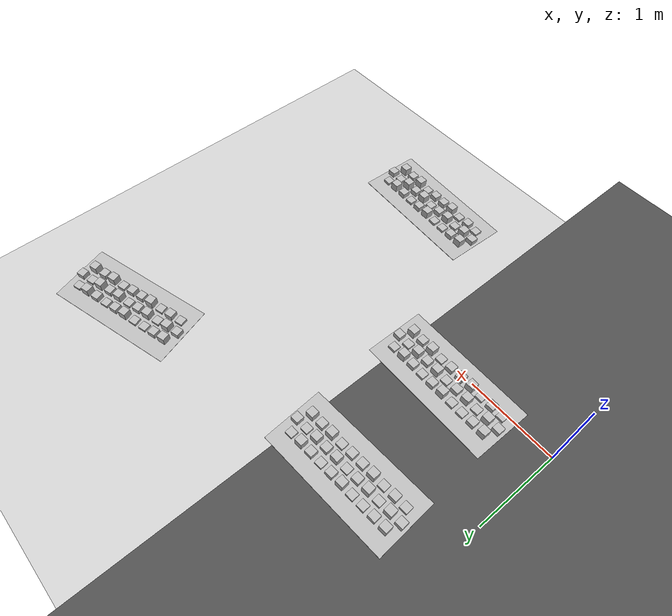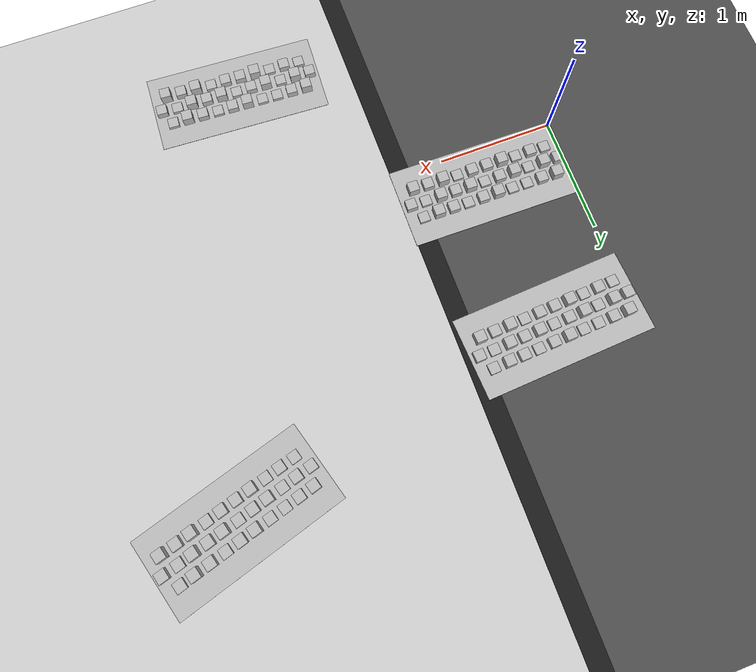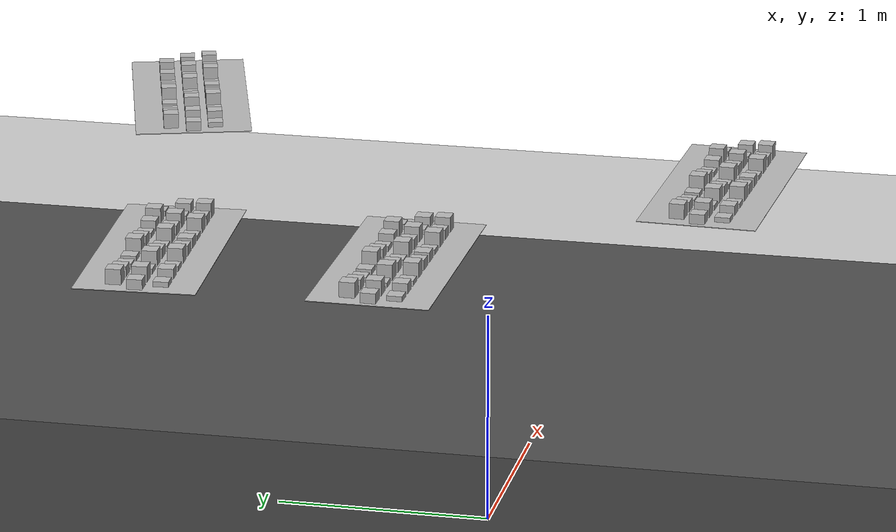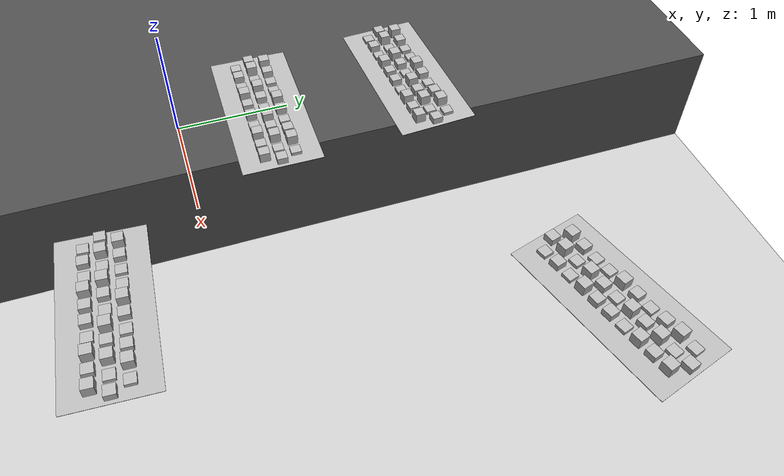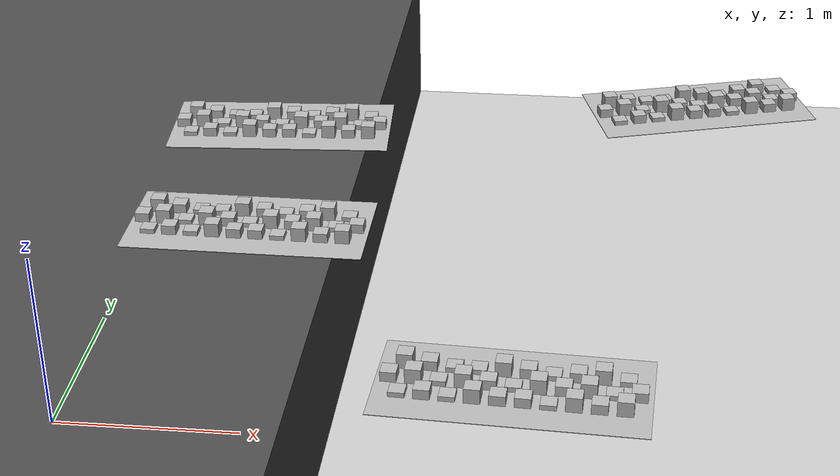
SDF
<sdf version="1.6">
 <world name="default">
  <model name="ground_plane">
   <static>1</static>
   <link name="link">
    <collision name="collision">
     <geometry><plane><normal>0 0 1</normal><size>100 100</size></plane></geometry>
     <surface><friction><ode><mu>100</mu><mu2>50</mu2></ode></friction></surface>
    </collision>
    <visual name="visual">
     <cast_shadows>0</cast_shadows>
     <geometry><plane><normal>0 0 1</normal><size>100 100</size></plane></geometry>
     <material>
      <script><uri>file://media/materials/scripts/gazebo.material</uri><name>Gazebo/Grey</name></script>
     </material>
    </visual>
   </link>
  </model>
  <model name="asphalt_plane">
   <static>1</static>
   <link name="link">
    <collision name="collision">
     <geometry><box><size>20 20 1.4296</size></box></geometry>
     <surface><friction><ode><mu>100</mu><mu2>50</mu2></ode></friction></surface>
    </collision>
    <visual name="visual">
     <cast_shadows>0</cast_shadows>
     <geometry><box><size>20 20 1.4296</size></box></geometry>
     <material>
      <script>
       <uri>model://asphalt_plane/materials/scripts</uri>
       <uri>model://asphalt_plane/materials/textures</uri>
       <name>vrc/asphalt</name>
      </script>
     </material>
    </visual>
   </link>
   <pose>-8.53833 2.29833 0.165376 0 -0 0</pose>
  </model>
  <model name="frc2016_roughterrain_1_clone">
   <static>0</static>
   <link name="link">
    <visual name="platform">
     <pose>0 0 0.08269 0 -0 0</pose>
     <geometry><box><size>1.27 0.5969 0.003175</size></box></geometry>
    </visual>
    <collision name="platform">
     <pose>0 0 0.08269 0 -0 0</pose>
     <geometry><box><size>1.27 0.5969 0.003175</size></box></geometry>
    </collision>
    <visual name="row1_block1_sm">
     <pose>0.51435 0.1143 0.09698 0 -0 0</pose>
     <geometry><box><size>0.0762 0.0762 0.0254</size></box></geometry>
    </visual>
    <collision name="row1_block1_sm">
     <pose>0.51435 0.1143 0.09698 0 -0 0</pose>
     <geometry><box><size>0.0762 0.0762 0.0254</size></box></geometry>
    </collision>
    <visual name="row1_block2_lg">
     <pose>0.40005 0.1143 0.12238 0 -0 0</pose>
     <geometry><box><size>0.0762 0.0762 0.0762</size></box></geometry>
    </visual>
    <collision name="row1_block2_lg">
     <pose>0.40005 0.1143 0.12238 0 -0 0</pose>
     <geometry><box><size>0.0762 0.0762 0.0762</size></box></geometry>
    </collision>
    <visual name="row1_block3_md">
     <pose>0.28575 0.1143 0.10968 0 -0 0</pose>
     <geometry><box><size>0.0762 0.0762 0.0508</size></box></geometry>
    </visual>
    <collision name="row1_block3_md">
     <pose>0.28575 0.1143 0.10968 0 -0 0</pose>
     <geometry><box><size>0.0762 0.0762 0.0508</size></box></geometry>
    </collision>
    <visual name="row1_block4_sm">
     <pose>0.17145 0.1143 0.09698 0 -0 0</pose>
     <geometry><box><size>0.0762 0.0762 0.0254</size></box></geometry>
    </visual>
    <collision name="row1_block4_sm">
     <pose>0.17145 0.1143 0.09698 0 -0 0</pose>
     <geometry><box><size>0.0762 0.0762 0.0254</size></box></geometry>
    </collision>
    <visual name="row1_block5_md">
     <pose>0.05715 0.1143 0.10968 0 -0 0</pose>
     <geometry><box><size>0.0762 0.0762 0.0508</size></box></geometry>
    </visual>
    <collision name="row1_block5_md">
     <pose>0.05715 0.1143 0.10968 0 -0 0</pose>
     <geometry><box><size>0.0762 0.0762 0.0508</size></box></geometry>
    </collision>
    <visual name="row1_block6_lg">
     <pose>-0.05715 0.1143 0.12238 0 -0 0</pose>
     <geometry><box><size>0.0762 0.0762 0.0762</size></box></geometry>
    </visual>
    <collision name="row1_block6_lg">
     <pose>-0.05715 0.1143 0.12238 0 -0 0</pose>
     <geometry><box><size>0.0762 0.0762 0.0762</size></box></geometry>
    </collision>
    <visual name="row1_block7_sm">
     <pose>-0.17145 0.1143 0.09698 0 -0 0</pose>
     <geometry><box><size>0.0762 0.0762 0.0254</size></box></geometry>
    </visual>
    <collision name="row1_block7_sm">
     <pose>-0.17145 0.1143 0.09698 0 -0 0</pose>
     <geometry><box><size>0.0762 0.0762 0.0254</size></box></geometry>
    </collision>
    <visual name="row1_block8_sm">
     <pose>-0.28575 0.1143 0.09698 0 -0 0</pose>
     <geometry><box><size>0.0762 0.0762 0.0254</size></box></geometry>
    </visual>
    <collision name="row1_block8_sm">
     <pose>-0.28575 0.1143 0.09698 0 -0 0</pose>
     <geometry><box><size>0.0762 0.0762 0.0254</size></box></geometry>
    </collision>
    <visual name="row1_block9_md">
     <pose>-0.40005 0.1143 0.10968 0 -0 0</pose>
     <geometry><box><size>0.0762 0.0762 0.0508</size></box></geometry>
    </visual>
    <collision name="row1_block9_md">
     <pose>-0.40005 0.1143 0.10968 0 -0 0</pose>
     <geometry><box><size>0.0762 0.0762 0.0508</size></box></geometry>
    </collision>
    <visual name="row1_block10_lg">
     <pose>-0.51435 0.1143 0.12238 0 -0 0</pose>
     <geometry><box><size>0.0762 0.0762 0.0762</size></box></geometry>
    </visual>
    <collision name="row1_block10_lg">
     <pose>-0.51435 0.1143 0.12238 0 -0 0</pose>
     <geometry><box><size>0.0762 0.0762 0.0762</size></box></geometry>
    </collision>
    <visual name="row2_block1_md">
     <pose>0.5715 0 0.10968 0 -0 0</pose>
     <geometry><box><size>0.0762 0.0762 0.0508</size></box></geometry>
    </visual>
    <collision name="row2_block1_md">
     <pose>0.5715 0 0.10968 0 -0 0</pose>
     <geometry><box><size>0.0762 0.0762 0.0508</size></box></geometry>
    </collision>
    <visual name="row2_block2_sm">
     <pose>0.4572 0 0.09698 0 -0 0</pose>
     <geometry><box><size>0.0762 0.0762 0.0254</size></box></geometry>
    </visual>
    <collision name="row2_block2_sm">
     <pose>0.4572 0 0.09698 0 -0 0</pose>
     <geometry><box><size>0.0762 0.0762 0.0254</size></box></geometry>
    </collision>
    <visual name="row2_block3_lg">
     <pose>0.3429 0 0.12238 0 -0 0</pose>
     <geometry><box><size>0.0762 0.0762 0.0762</size></box></geometry>
    </visual>
    <collision name="row2_block3_lg">
     <pose>0.3429 0 0.12238 0 -0 0</pose>
     <geometry><box><size>0.0762 0.0762 0.0762</size></box></geometry>
    </collision>
    <visual name="row2_block4_md">
     <pose>0.2286 0 0.10968 0 -0 0</pose>
     <geometry><box><size>0.0762 0.0762 0.0508</size></box></geometry>
    </visual>
    <collision name="row2_block4_md">
     <pose>0.2286 0 0.10968 0 -0 0</pose>
     <geometry><box><size>0.0762 0.0762 0.0508</size></box></geometry>
    </collision>
    <visual name="row2_block5_lg">
     <pose>0.1143 0 0.12238 0 -0 0</pose>
     <geometry><box><size>0.0762 0.0762 0.0762</size></box></geometry>
    </visual>
    <collision name="row2_block5_lg">
     <pose>0.1143 0 0.12238 0 -0 0</pose>
     <geometry><box><size>0.0762 0.0762 0.0762</size></box></geometry>
    </collision>
    <visual name="row2_block6_sm">
     <pose>0 0 0.09698 0 -0 0</pose>
     <geometry><box><size>0.0762 0.0762 0.0254</size></box></geometry>
    </visual>
    <collision name="row2_block6_sm">
     <pose>0 0 0.09698 0 -0 0</pose>
     <geometry><box><size>0.0762 0.0762 0.0254</size></box></geometry>
    </collision>
    <visual name="row2_block7_md">
     <pose>-0.1143 0 0.10968 0 -0 0</pose>
     <geometry><box><size>0.0762 0.0762 0.0508</size></box></geometry>
    </visual>
    <collision name="row2_block7_md">
     <pose>-0.1143 0 0.10968 0 -0 0</pose>
     <geometry><box><size>0.0762 0.0762 0.0508</size></box></geometry>
    </collision>
    <visual name="row2_block8_lg">
     <pose>-0.2286 0 0.12238 0 -0 0</pose>
     <geometry><box><size>0.0762 0.0762 0.0762</size></box></geometry>
    </visual>
    <collision name="row2_block8_lg">
     <pose>-0.2286 0 0.12238 0 -0 0</pose>
     <geometry><box><size>0.0762 0.0762 0.0762</size></box></geometry>
    </collision>
    <visual name="row2_block9_sm">
     <pose>-0.3429 0 0.09698 0 -0 0</pose>
     <geometry><box><size>0.0762 0.0762 0.0254</size></box></geometry>
    </visual>
    <collision name="row2_block9_sm">
     <pose>-0.3429 0 0.09698 0 -0 0</pose>
     <geometry><box><size>0.0762 0.0762 0.0254</size></box></geometry>
    </collision>
    <visual name="row2_block10_lg">
     <pose>-0.4572 0 0.12238 0 -0 0</pose>
     <geometry><box><size>0.0762 0.0762 0.0762</size></box></geometry>
    </visual>
    <collision name="row2_block10_lg">
     <pose>-0.4572 0 0.12238 0 -0 0</pose>
     <geometry><box><size>0.0762 0.0762 0.0762</size></box></geometry>
    </collision>
    <visual name="row2_block11_md">
     <pose>-0.5715 0 0.10968 0 -0 0</pose>
     <geometry><box><size>0.0762 0.0762 0.0508</size></box></geometry>
    </visual>
    <collision name="row2_block11_md">
     <pose>-0.5715 0 0.10968 0 -0 0</pose>
     <geometry><box><size>0.0762 0.0762 0.0508</size></box></geometry>
    </collision>
    <visual name="row3_block1_lg">
     <pose>0.51435 -0.1143 0.12238 0 -0 0</pose>
     <geometry><box><size>0.0762 0.0762 0.0762</size></box></geometry>
    </visual>
    <collision name="row3_block1_lg">
     <pose>0.51435 -0.1143 0.12238 0 -0 0</pose>
     <geometry><box><size>0.0762 0.0762 0.0762</size></box></geometry>
    </collision>
    <visual name="row3_block2_md">
     <pose>0.40005 -0.1143 0.10968 0 -0 0</pose>
     <geometry><box><size>0.0762 0.0762 0.0508</size></box></geometry>
    </visual>
    <collision name="row3_block2_md">
     <pose>0.40005 -0.1143 0.10968 0 -0 0</pose>
     <geometry><box><size>0.0762 0.0762 0.0508</size></box></geometry>
    </collision>
    <visual name="row3_block3_lg">
     <pose>0.28575 -0.1143 0.12238 0 -0 0</pose>
     <geometry><box><size>0.0762 0.0762 0.0762</size></box></geometry>
    </visual>
    <collision name="row3_block3_lg">
     <pose>0.28575 -0.1143 0.12238 0 -0 0</pose>
     <geometry><box><size>0.0762 0.0762 0.0762</size></box></geometry>
    </collision>
    <visual name="row3_block4_sm">
     <pose>0.17145 -0.1143 0.09698 0 -0 0</pose>
     <geometry><box><size>0.0762 0.0762 0.0254</size></box></geometry>
    </visual>
    <collision name="row3_block4_sm">
     <pose>0.17145 -0.1143 0.09698 0 -0 0</pose>
     <geometry><box><size>0.0762 0.0762 0.0254</size></box></geometry>
    </collision>
    <visual name="row3_block5_md">
     <pose>0.05715 -0.1143 0.10968 0 -0 0</pose>
     <geometry><box><size>0.0762 0.0762 0.0508</size></box></geometry>
    </visual>
    <collision name="row3_block5_md">
     <pose>0.05715 -0.1143 0.10968 0 -0 0</pose>
     <geometry><box><size>0.0762 0.0762 0.0508</size></box></geometry>
    </collision>
    <visual name="row3_block6_md">
     <pose>-0.05715 -0.1143 0.10968 0 -0 0</pose>
     <geometry><box><size>0.0762 0.0762 0.0508</size></box></geometry>
    </visual>
    <collision name="row3_block6_md">
     <pose>-0.05715 -0.1143 0.10968 0 -0 0</pose>
     <geometry><box><size>0.0762 0.0762 0.0508</size></box></geometry>
    </collision>
    <visual name="row3_block7_lg">
     <pose>-0.17145 -0.1143 0.12238 0 -0 0</pose>
     <geometry><box><size>0.0762 0.0762 0.0762</size></box></geometry>
    </visual>
    <collision name="row3_block7_lg">
     <pose>-0.17145 -0.1143 0.12238 0 -0 0</pose>
     <geometry><box><size>0.0762 0.0762 0.0762</size></box></geometry>
    </collision>
    <visual name="row3_block8_sm">
     <pose>-0.28575 -0.1143 0.09698 0 -0 0</pose>
     <geometry><box><size>0.0762 0.0762 0.0254</size></box></geometry>
    </visual>
    <collision name="row3_block8_sm">
     <pose>-0.28575 -0.1143 0.09698 0 -0 0</pose>
     <geometry><box><size>0.0762 0.0762 0.0254</size></box></geometry>
    </collision>
    <visual name="row3_block9_md">
     <pose>-0.40005 -0.1143 0.10968 0 -0 0</pose>
     <geometry><box><size>0.0762 0.0762 0.0508</size></box></geometry>
    </visual>
    <collision name="row3_block9_md">
     <pose>-0.40005 -0.1143 0.10968 0 -0 0</pose>
     <geometry><box><size>0.0762 0.0762 0.0508</size></box></geometry>
    </collision>
    <visual name="row3_block10_sm">
     <pose>-0.51435 -0.1143 0.09698 0 -0 0</pose>
     <geometry><box><size>0.0762 0.0762 0.0254</size></box></geometry>
    </visual>
    <collision name="row3_block10_sm">
     <pose>-0.51435 -0.1143 0.09698 0 -0 0</pose>
     <geometry><box><size>0.0762 0.0762 0.0254</size></box></geometry>
    </collision>
    <inertial>
     <inertia><ixx>1</ixx><ixy>0</ixy><ixz>0</ixz><iyy>1</iyy><iyz>0</iyz><izz>1</izz></inertia>
     <mass>1</mass>
    </inertial>
   </link>
   <pose>0.979326 0.648992 0.799074 1e-06 -0 -0.008948</pose>
  </model>
  <model name="frc2016_roughterrain_1_clone_8">
   <static>0</static>
   <link name="link">
    <visual name="platform">
     <pose>0 0 0.08269 0 -0 0</pose>
     <geometry><box><size>1.27 0.5969 0.003175</size></box></geometry>
    </visual>
    <collision name="platform">
     <pose>0 0 0.08269 0 -0 0</pose>
     <geometry><box><size>1.27 0.5969 0.003175</size></box></geometry>
    </collision>
    <visual name="row1_block1_sm">
     <pose>0.51435 0.1143 0.09698 0 -0 0</pose>
     <geometry><box><size>0.0762 0.0762 0.0254</size></box></geometry>
    </visual>
    <collision name="row1_block1_sm">
     <pose>0.51435 0.1143 0.09698 0 -0 0</pose>
     <geometry><box><size>0.0762 0.0762 0.0254</size></box></geometry>
    </collision>
    <visual name="row1_block2_lg">
     <pose>0.40005 0.1143 0.12238 0 -0 0</pose>
     <geometry><box><size>0.0762 0.0762 0.0762</size></box></geometry>
    </visual>
    <collision name="row1_block2_lg">
     <pose>0.40005 0.1143 0.12238 0 -0 0</pose>
     <geometry><box><size>0.0762 0.0762 0.0762</size></box></geometry>
    </collision>
    <visual name="row1_block3_md">
     <pose>0.28575 0.1143 0.10968 0 -0 0</pose>
     <geometry><box><size>0.0762 0.0762 0.0508</size></box></geometry>
    </visual>
    <collision name="row1_block3_md">
     <pose>0.28575 0.1143 0.10968 0 -0 0</pose>
     <geometry><box><size>0.0762 0.0762 0.0508</size></box></geometry>
    </collision>
    <visual name="row1_block4_sm">
     <pose>0.17145 0.1143 0.09698 0 -0 0</pose>
     <geometry><box><size>0.0762 0.0762 0.0254</size></box></geometry>
    </visual>
    <collision name="row1_block4_sm">
     <pose>0.17145 0.1143 0.09698 0 -0 0</pose>
     <geometry><box><size>0.0762 0.0762 0.0254</size></box></geometry>
    </collision>
    <visual name="row1_block5_md">
     <pose>0.05715 0.1143 0.10968 0 -0 0</pose>
     <geometry><box><size>0.0762 0.0762 0.0508</size></box></geometry>
    </visual>
    <collision name="row1_block5_md">
     <pose>0.05715 0.1143 0.10968 0 -0 0</pose>
     <geometry><box><size>0.0762 0.0762 0.0508</size></box></geometry>
    </collision>
    <visual name="row1_block6_lg">
     <pose>-0.05715 0.1143 0.12238 0 -0 0</pose>
     <geometry><box><size>0.0762 0.0762 0.0762</size></box></geometry>
    </visual>
    <collision name="row1_block6_lg">
     <pose>-0.05715 0.1143 0.12238 0 -0 0</pose>
     <geometry><box><size>0.0762 0.0762 0.0762</size></box></geometry>
    </collision>
    <visual name="row1_block7_sm">
     <pose>-0.17145 0.1143 0.09698 0 -0 0</pose>
     <geometry><box><size>0.0762 0.0762 0.0254</size></box></geometry>
    </visual>
    <collision name="row1_block7_sm">
     <pose>-0.17145 0.1143 0.09698 0 -0 0</pose>
     <geometry><box><size>0.0762 0.0762 0.0254</size></box></geometry>
    </collision>
    <visual name="row1_block8_sm">
     <pose>-0.28575 0.1143 0.09698 0 -0 0</pose>
     <geometry><box><size>0.0762 0.0762 0.0254</size></box></geometry>
    </visual>
    <collision name="row1_block8_sm">
     <pose>-0.28575 0.1143 0.09698 0 -0 0</pose>
     <geometry><box><size>0.0762 0.0762 0.0254</size></box></geometry>
    </collision>
    <visual name="row1_block9_md">
     <pose>-0.40005 0.1143 0.10968 0 -0 0</pose>
     <geometry><box><size>0.0762 0.0762 0.0508</size></box></geometry>
    </visual>
    <collision name="row1_block9_md">
     <pose>-0.40005 0.1143 0.10968 0 -0 0</pose>
     <geometry><box><size>0.0762 0.0762 0.0508</size></box></geometry>
    </collision>
    <visual name="row1_block10_lg">
     <pose>-0.51435 0.1143 0.12238 0 -0 0</pose>
     <geometry><box><size>0.0762 0.0762 0.0762</size></box></geometry>
    </visual>
    <collision name="row1_block10_lg">
     <pose>-0.51435 0.1143 0.12238 0 -0 0</pose>
     <geometry><box><size>0.0762 0.0762 0.0762</size></box></geometry>
    </collision>
    <visual name="row2_block1_md">
     <pose>0.5715 0 0.10968 0 -0 0</pose>
     <geometry><box><size>0.0762 0.0762 0.0508</size></box></geometry>
    </visual>
    <collision name="row2_block1_md">
     <pose>0.5715 0 0.10968 0 -0 0</pose>
     <geometry><box><size>0.0762 0.0762 0.0508</size></box></geometry>
    </collision>
    <visual name="row2_block2_sm">
     <pose>0.4572 0 0.09698 0 -0 0</pose>
     <geometry><box><size>0.0762 0.0762 0.0254</size></box></geometry>
    </visual>
    <collision name="row2_block2_sm">
     <pose>0.4572 0 0.09698 0 -0 0</pose>
     <geometry><box><size>0.0762 0.0762 0.0254</size></box></geometry>
    </collision>
    <visual name="row2_block3_lg">
     <pose>0.3429 0 0.12238 0 -0 0</pose>
     <geometry><box><size>0.0762 0.0762 0.0762</size></box></geometry>
    </visual>
    <collision name="row2_block3_lg">
     <pose>0.3429 0 0.12238 0 -0 0</pose>
     <geometry><box><size>0.0762 0.0762 0.0762</size></box></geometry>
    </collision>
    <visual name="row2_block4_md">
     <pose>0.2286 0 0.10968 0 -0 0</pose>
     <geometry><box><size>0.0762 0.0762 0.0508</size></box></geometry>
    </visual>
    <collision name="row2_block4_md">
     <pose>0.2286 0 0.10968 0 -0 0</pose>
     <geometry><box><size>0.0762 0.0762 0.0508</size></box></geometry>
    </collision>
    <visual name="row2_block5_lg">
     <pose>0.1143 0 0.12238 0 -0 0</pose>
     <geometry><box><size>0.0762 0.0762 0.0762</size></box></geometry>
    </visual>
    <collision name="row2_block5_lg">
     <pose>0.1143 0 0.12238 0 -0 0</pose>
     <geometry><box><size>0.0762 0.0762 0.0762</size></box></geometry>
    </collision>
    <visual name="row2_block6_sm">
     <pose>0 0 0.09698 0 -0 0</pose>
     <geometry><box><size>0.0762 0.0762 0.0254</size></box></geometry>
    </visual>
    <collision name="row2_block6_sm">
     <pose>0 0 0.09698 0 -0 0</pose>
     <geometry><box><size>0.0762 0.0762 0.0254</size></box></geometry>
    </collision>
    <visual name="row2_block7_md">
     <pose>-0.1143 0 0.10968 0 -0 0</pose>
     <geometry><box><size>0.0762 0.0762 0.0508</size></box></geometry>
    </visual>
    <collision name="row2_block7_md">
     <pose>-0.1143 0 0.10968 0 -0 0</pose>
     <geometry><box><size>0.0762 0.0762 0.0508</size></box></geometry>
    </collision>
    <visual name="row2_block8_lg">
     <pose>-0.2286 0 0.12238 0 -0 0</pose>
     <geometry><box><size>0.0762 0.0762 0.0762</size></box></geometry>
    </visual>
    <collision name="row2_block8_lg">
     <pose>-0.2286 0 0.12238 0 -0 0</pose>
     <geometry><box><size>0.0762 0.0762 0.0762</size></box></geometry>
    </collision>
    <visual name="row2_block9_sm">
     <pose>-0.3429 0 0.09698 0 -0 0</pose>
     <geometry><box><size>0.0762 0.0762 0.0254</size></box></geometry>
    </visual>
    <collision name="row2_block9_sm">
     <pose>-0.3429 0 0.09698 0 -0 0</pose>
     <geometry><box><size>0.0762 0.0762 0.0254</size></box></geometry>
    </collision>
    <visual name="row2_block10_lg">
     <pose>-0.4572 0 0.12238 0 -0 0</pose>
     <geometry><box><size>0.0762 0.0762 0.0762</size></box></geometry>
    </visual>
    <collision name="row2_block10_lg">
     <pose>-0.4572 0 0.12238 0 -0 0</pose>
     <geometry><box><size>0.0762 0.0762 0.0762</size></box></geometry>
    </collision>
    <visual name="row2_block11_md">
     <pose>-0.5715 0 0.10968 0 -0 0</pose>
     <geometry><box><size>0.0762 0.0762 0.0508</size></box></geometry>
    </visual>
    <collision name="row2_block11_md">
     <pose>-0.5715 0 0.10968 0 -0 0</pose>
     <geometry><box><size>0.0762 0.0762 0.0508</size></box></geometry>
    </collision>
    <visual name="row3_block1_lg">
     <pose>0.51435 -0.1143 0.12238 0 -0 0</pose>
     <geometry><box><size>0.0762 0.0762 0.0762</size></box></geometry>
    </visual>
    <collision name="row3_block1_lg">
     <pose>0.51435 -0.1143 0.12238 0 -0 0</pose>
     <geometry><box><size>0.0762 0.0762 0.0762</size></box></geometry>
    </collision>
    <visual name="row3_block2_md">
     <pose>0.40005 -0.1143 0.10968 0 -0 0</pose>
     <geometry><box><size>0.0762 0.0762 0.0508</size></box></geometry>
    </visual>
    <collision name="row3_block2_md">
     <pose>0.40005 -0.1143 0.10968 0 -0 0</pose>
     <geometry><box><size>0.0762 0.0762 0.0508</size></box></geometry>
    </collision>
    <visual name="row3_block3_lg">
     <pose>0.28575 -0.1143 0.12238 0 -0 0</pose>
     <geometry><box><size>0.0762 0.0762 0.0762</size></box></geometry>
    </visual>
    <collision name="row3_block3_lg">
     <pose>0.28575 -0.1143 0.12238 0 -0 0</pose>
     <geometry><box><size>0.0762 0.0762 0.0762</size></box></geometry>
    </collision>
    <visual name="row3_block4_sm">
     <pose>0.17145 -0.1143 0.09698 0 -0 0</pose>
     <geometry><box><size>0.0762 0.0762 0.0254</size></box></geometry>
    </visual>
    <collision name="row3_block4_sm">
     <pose>0.17145 -0.1143 0.09698 0 -0 0</pose>
     <geometry><box><size>0.0762 0.0762 0.0254</size></box></geometry>
    </collision>
    <visual name="row3_block5_md">
     <pose>0.05715 -0.1143 0.10968 0 -0 0</pose>
     <geometry><box><size>0.0762 0.0762 0.0508</size></box></geometry>
    </visual>
    <collision name="row3_block5_md">
     <pose>0.05715 -0.1143 0.10968 0 -0 0</pose>
     <geometry><box><size>0.0762 0.0762 0.0508</size></box></geometry>
    </collision>
    <visual name="row3_block6_md">
     <pose>-0.05715 -0.1143 0.10968 0 -0 0</pose>
     <geometry><box><size>0.0762 0.0762 0.0508</size></box></geometry>
    </visual>
    <collision name="row3_block6_md">
     <pose>-0.05715 -0.1143 0.10968 0 -0 0</pose>
     <geometry><box><size>0.0762 0.0762 0.0508</size></box></geometry>
    </collision>
    <visual name="row3_block7_lg">
     <pose>-0.17145 -0.1143 0.12238 0 -0 0</pose>
     <geometry><box><size>0.0762 0.0762 0.0762</size></box></geometry>
    </visual>
    <collision name="row3_block7_lg">
     <pose>-0.17145 -0.1143 0.12238 0 -0 0</pose>
     <geometry><box><size>0.0762 0.0762 0.0762</size></box></geometry>
    </collision>
    <visual name="row3_block8_sm">
     <pose>-0.28575 -0.1143 0.09698 0 -0 0</pose>
     <geometry><box><size>0.0762 0.0762 0.0254</size></box></geometry>
    </visual>
    <collision name="row3_block8_sm">
     <pose>-0.28575 -0.1143 0.09698 0 -0 0</pose>
     <geometry><box><size>0.0762 0.0762 0.0254</size></box></geometry>
    </collision>
    <visual name="row3_block9_md">
     <pose>-0.40005 -0.1143 0.10968 0 -0 0</pose>
     <geometry><box><size>0.0762 0.0762 0.0508</size></box></geometry>
    </visual>
    <collision name="row3_block9_md">
     <pose>-0.40005 -0.1143 0.10968 0 -0 0</pose>
     <geometry><box><size>0.0762 0.0762 0.0508</size></box></geometry>
    </collision>
    <visual name="row3_block10_sm">
     <pose>-0.51435 -0.1143 0.09698 0 -0 0</pose>
     <geometry><box><size>0.0762 0.0762 0.0254</size></box></geometry>
    </visual>
    <collision name="row3_block10_sm">
     <pose>-0.51435 -0.1143 0.09698 0 -0 0</pose>
     <geometry><box><size>0.0762 0.0762 0.0254</size></box></geometry>
    </collision>
    <inertial>
     <inertia><ixx>1</ixx><ixy>0</ixy><ixz>0</ixz><iyy>1</iyy><iyz>0</iyz><izz>1</izz></inertia>
     <mass>1</mass>
    </inertial>
   </link>
   <pose>2.46116 -0.685205 0.79313 -0.004441 -0.000526 -0.050136</pose>
  </model>
  <model name="frc2016_roughterrain_1_clone_11_clone_1">
   <static>0</static>
   <link name="link">
    <visual name="platform">
     <pose>0 0 0.08269 0 -0 0</pose>
     <geometry><box><size>1.27 0.5969 0.003175</size></box></geometry>
    </visual>
    <collision name="platform">
     <pose>0 0 0.08269 0 -0 0</pose>
     <geometry><box><size>1.27 0.5969 0.003175</size></box></geometry>
    </collision>
    <visual name="row1_block1_sm">
     <pose>0.51435 0.1143 0.09698 0 -0 0</pose>
     <geometry><box><size>0.0762 0.0762 0.0254</size></box></geometry>
    </visual>
    <collision name="row1_block1_sm">
     <pose>0.51435 0.1143 0.09698 0 -0 0</pose>
     <geometry><box><size>0.0762 0.0762 0.0254</size></box></geometry>
    </collision>
    <visual name="row1_block2_lg">
     <pose>0.40005 0.1143 0.12238 0 -0 0</pose>
     <geometry><box><size>0.0762 0.0762 0.0762</size></box></geometry>
    </visual>
    <collision name="row1_block2_lg">
     <pose>0.40005 0.1143 0.12238 0 -0 0</pose>
     <geometry><box><size>0.0762 0.0762 0.0762</size></box></geometry>
    </collision>
    <visual name="row1_block3_md">
     <pose>0.28575 0.1143 0.10968 0 -0 0</pose>
     <geometry><box><size>0.0762 0.0762 0.0508</size></box></geometry>
    </visual>
    <collision name="row1_block3_md">
     <pose>0.28575 0.1143 0.10968 0 -0 0</pose>
     <geometry><box><size>0.0762 0.0762 0.0508</size></box></geometry>
    </collision>
    <visual name="row1_block4_sm">
     <pose>0.17145 0.1143 0.09698 0 -0 0</pose>
     <geometry><box><size>0.0762 0.0762 0.0254</size></box></geometry>
    </visual>
    <collision name="row1_block4_sm">
     <pose>0.17145 0.1143 0.09698 0 -0 0</pose>
     <geometry><box><size>0.0762 0.0762 0.0254</size></box></geometry>
    </collision>
    <visual name="row1_block5_md">
     <pose>0.05715 0.1143 0.10968 0 -0 0</pose>
     <geometry><box><size>0.0762 0.0762 0.0508</size></box></geometry>
    </visual>
    <collision name="row1_block5_md">
     <pose>0.05715 0.1143 0.10968 0 -0 0</pose>
     <geometry><box><size>0.0762 0.0762 0.0508</size></box></geometry>
    </collision>
    <visual name="row1_block6_lg">
     <pose>-0.05715 0.1143 0.12238 0 -0 0</pose>
     <geometry><box><size>0.0762 0.0762 0.0762</size></box></geometry>
    </visual>
    <collision name="row1_block6_lg">
     <pose>-0.05715 0.1143 0.12238 0 -0 0</pose>
     <geometry><box><size>0.0762 0.0762 0.0762</size></box></geometry>
    </collision>
    <visual name="row1_block7_sm">
     <pose>-0.17145 0.1143 0.09698 0 -0 0</pose>
     <geometry><box><size>0.0762 0.0762 0.0254</size></box></geometry>
    </visual>
    <collision name="row1_block7_sm">
     <pose>-0.17145 0.1143 0.09698 0 -0 0</pose>
     <geometry><box><size>0.0762 0.0762 0.0254</size></box></geometry>
    </collision>
    <visual name="row1_block8_sm">
     <pose>-0.28575 0.1143 0.09698 0 -0 0</pose>
     <geometry><box><size>0.0762 0.0762 0.0254</size></box></geometry>
    </visual>
    <collision name="row1_block8_sm">
     <pose>-0.28575 0.1143 0.09698 0 -0 0</pose>
     <geometry><box><size>0.0762 0.0762 0.0254</size></box></geometry>
    </collision>
    <visual name="row1_block9_md">
     <pose>-0.40005 0.1143 0.10968 0 -0 0</pose>
     <geometry><box><size>0.0762 0.0762 0.0508</size></box></geometry>
    </visual>
    <collision name="row1_block9_md">
     <pose>-0.40005 0.1143 0.10968 0 -0 0</pose>
     <geometry><box><size>0.0762 0.0762 0.0508</size></box></geometry>
    </collision>
    <visual name="row1_block10_lg">
     <pose>-0.51435 0.1143 0.12238 0 -0 0</pose>
     <geometry><box><size>0.0762 0.0762 0.0762</size></box></geometry>
    </visual>
    <collision name="row1_block10_lg">
     <pose>-0.51435 0.1143 0.12238 0 -0 0</pose>
     <geometry><box><size>0.0762 0.0762 0.0762</size></box></geometry>
    </collision>
    <visual name="row2_block1_md">
     <pose>0.5715 0 0.10968 0 -0 0</pose>
     <geometry><box><size>0.0762 0.0762 0.0508</size></box></geometry>
    </visual>
    <collision name="row2_block1_md">
     <pose>0.5715 0 0.10968 0 -0 0</pose>
     <geometry><box><size>0.0762 0.0762 0.0508</size></box></geometry>
    </collision>
    <visual name="row2_block2_sm">
     <pose>0.4572 0 0.09698 0 -0 0</pose>
     <geometry><box><size>0.0762 0.0762 0.0254</size></box></geometry>
    </visual>
    <collision name="row2_block2_sm">
     <pose>0.4572 0 0.09698 0 -0 0</pose>
     <geometry><box><size>0.0762 0.0762 0.0254</size></box></geometry>
    </collision>
    <visual name="row2_block3_lg">
     <pose>0.3429 0 0.12238 0 -0 0</pose>
     <geometry><box><size>0.0762 0.0762 0.0762</size></box></geometry>
    </visual>
    <collision name="row2_block3_lg">
     <pose>0.3429 0 0.12238 0 -0 0</pose>
     <geometry><box><size>0.0762 0.0762 0.0762</size></box></geometry>
    </collision>
    <visual name="row2_block4_md">
     <pose>0.2286 0 0.10968 0 -0 0</pose>
     <geometry><box><size>0.0762 0.0762 0.0508</size></box></geometry>
    </visual>
    <collision name="row2_block4_md">
     <pose>0.2286 0 0.10968 0 -0 0</pose>
     <geometry><box><size>0.0762 0.0762 0.0508</size></box></geometry>
    </collision>
    <visual name="row2_block5_lg">
     <pose>0.1143 0 0.12238 0 -0 0</pose>
     <geometry><box><size>0.0762 0.0762 0.0762</size></box></geometry>
    </visual>
    <collision name="row2_block5_lg">
     <pose>0.1143 0 0.12238 0 -0 0</pose>
     <geometry><box><size>0.0762 0.0762 0.0762</size></box></geometry>
    </collision>
    <visual name="row2_block6_sm">
     <pose>0 0 0.09698 0 -0 0</pose>
     <geometry><box><size>0.0762 0.0762 0.0254</size></box></geometry>
    </visual>
    <collision name="row2_block6_sm">
     <pose>0 0 0.09698 0 -0 0</pose>
     <geometry><box><size>0.0762 0.0762 0.0254</size></box></geometry>
    </collision>
    <visual name="row2_block7_md">
     <pose>-0.1143 0 0.10968 0 -0 0</pose>
     <geometry><box><size>0.0762 0.0762 0.0508</size></box></geometry>
    </visual>
    <collision name="row2_block7_md">
     <pose>-0.1143 0 0.10968 0 -0 0</pose>
     <geometry><box><size>0.0762 0.0762 0.0508</size></box></geometry>
    </collision>
    <visual name="row2_block8_lg">
     <pose>-0.2286 0 0.12238 0 -0 0</pose>
     <geometry><box><size>0.0762 0.0762 0.0762</size></box></geometry>
    </visual>
    <collision name="row2_block8_lg">
     <pose>-0.2286 0 0.12238 0 -0 0</pose>
     <geometry><box><size>0.0762 0.0762 0.0762</size></box></geometry>
    </collision>
    <visual name="row2_block9_sm">
     <pose>-0.3429 0 0.09698 0 -0 0</pose>
     <geometry><box><size>0.0762 0.0762 0.0254</size></box></geometry>
    </visual>
    <collision name="row2_block9_sm">
     <pose>-0.3429 0 0.09698 0 -0 0</pose>
     <geometry><box><size>0.0762 0.0762 0.0254</size></box></geometry>
    </collision>
    <visual name="row2_block10_lg">
     <pose>-0.4572 0 0.12238 0 -0 0</pose>
     <geometry><box><size>0.0762 0.0762 0.0762</size></box></geometry>
    </visual>
    <collision name="row2_block10_lg">
     <pose>-0.4572 0 0.12238 0 -0 0</pose>
     <geometry><box><size>0.0762 0.0762 0.0762</size></box></geometry>
    </collision>
    <visual name="row2_block11_md">
     <pose>-0.5715 0 0.10968 0 -0 0</pose>
     <geometry><box><size>0.0762 0.0762 0.0508</size></box></geometry>
    </visual>
    <collision name="row2_block11_md">
     <pose>-0.5715 0 0.10968 0 -0 0</pose>
     <geometry><box><size>0.0762 0.0762 0.0508</size></box></geometry>
    </collision>
    <visual name="row3_block1_lg">
     <pose>0.51435 -0.1143 0.12238 0 -0 0</pose>
     <geometry><box><size>0.0762 0.0762 0.0762</size></box></geometry>
    </visual>
    <collision name="row3_block1_lg">
     <pose>0.51435 -0.1143 0.12238 0 -0 0</pose>
     <geometry><box><size>0.0762 0.0762 0.0762</size></box></geometry>
    </collision>
    <visual name="row3_block2_md">
     <pose>0.40005 -0.1143 0.10968 0 -0 0</pose>
     <geometry><box><size>0.0762 0.0762 0.0508</size></box></geometry>
    </visual>
    <collision name="row3_block2_md">
     <pose>0.40005 -0.1143 0.10968 0 -0 0</pose>
     <geometry><box><size>0.0762 0.0762 0.0508</size></box></geometry>
    </collision>
    <visual name="row3_block3_lg">
     <pose>0.28575 -0.1143 0.12238 0 -0 0</pose>
     <geometry><box><size>0.0762 0.0762 0.0762</size></box></geometry>
    </visual>
    <collision name="row3_block3_lg">
     <pose>0.28575 -0.1143 0.12238 0 -0 0</pose>
     <geometry><box><size>0.0762 0.0762 0.0762</size></box></geometry>
    </collision>
    <visual name="row3_block4_sm">
     <pose>0.17145 -0.1143 0.09698 0 -0 0</pose>
     <geometry><box><size>0.0762 0.0762 0.0254</size></box></geometry>
    </visual>
    <collision name="row3_block4_sm">
     <pose>0.17145 -0.1143 0.09698 0 -0 0</pose>
     <geometry><box><size>0.0762 0.0762 0.0254</size></box></geometry>
    </collision>
    <visual name="row3_block5_md">
     <pose>0.05715 -0.1143 0.10968 0 -0 0</pose>
     <geometry><box><size>0.0762 0.0762 0.0508</size></box></geometry>
    </visual>
    <collision name="row3_block5_md">
     <pose>0.05715 -0.1143 0.10968 0 -0 0</pose>
     <geometry><box><size>0.0762 0.0762 0.0508</size></box></geometry>
    </collision>
    <visual name="row3_block6_md">
     <pose>-0.05715 -0.1143 0.10968 0 -0 0</pose>
     <geometry><box><size>0.0762 0.0762 0.0508</size></box></geometry>
    </visual>
    <collision name="row3_block6_md">
     <pose>-0.05715 -0.1143 0.10968 0 -0 0</pose>
     <geometry><box><size>0.0762 0.0762 0.0508</size></box></geometry>
    </collision>
    <visual name="row3_block7_lg">
     <pose>-0.17145 -0.1143 0.12238 0 -0 0</pose>
     <geometry><box><size>0.0762 0.0762 0.0762</size></box></geometry>
    </visual>
    <collision name="row3_block7_lg">
     <pose>-0.17145 -0.1143 0.12238 0 -0 0</pose>
     <geometry><box><size>0.0762 0.0762 0.0762</size></box></geometry>
    </collision>
    <visual name="row3_block8_sm">
     <pose>-0.28575 -0.1143 0.09698 0 -0 0</pose>
     <geometry><box><size>0.0762 0.0762 0.0254</size></box></geometry>
    </visual>
    <collision name="row3_block8_sm">
     <pose>-0.28575 -0.1143 0.09698 0 -0 0</pose>
     <geometry><box><size>0.0762 0.0762 0.0254</size></box></geometry>
    </collision>
    <visual name="row3_block9_md">
     <pose>-0.40005 -0.1143 0.10968 0 -0 0</pose>
     <geometry><box><size>0.0762 0.0762 0.0508</size></box></geometry>
    </visual>
    <collision name="row3_block9_md">
     <pose>-0.40005 -0.1143 0.10968 0 -0 0</pose>
     <geometry><box><size>0.0762 0.0762 0.0508</size></box></geometry>
    </collision>
    <visual name="row3_block10_sm">
     <pose>-0.51435 -0.1143 0.09698 0 -0 0</pose>
     <geometry><box><size>0.0762 0.0762 0.0254</size></box></geometry>
    </visual>
    <collision name="row3_block10_sm">
     <pose>-0.51435 -0.1143 0.09698 0 -0 0</pose>
     <geometry><box><size>0.0762 0.0762 0.0254</size></box></geometry>
    </collision>
    <inertial>
     <inertia><ixx>1</ixx><ixy>0</ixy><ixz>0</ixz><iyy>1</iyy><iyz>0</iyz><izz>1</izz></inertia>
     <mass>1</mass>
    </inertial>
   </link>
   <pose>0.933859 1.80689 0.799054 0 -0 0.056745</pose>
  </model>
  <model name="frc2016_roughterrain_1_clone_11_clone_5">
   <static>0</static>
   <link name="link">
    <visual name="platform">
     <pose>0 0 0.08269 0 -0 0</pose>
     <geometry><box><size>1.27 0.5969 0.003175</size></box></geometry>
    </visual>
    <collision name="platform">
     <pose>0 0 0.08269 0 -0 0</pose>
     <geometry><box><size>1.27 0.5969 0.003175</size></box></geometry>
    </collision>
    <visual name="row1_block1_sm">
     <pose>0.51435 0.1143 0.09698 0 -0 0</pose>
     <geometry><box><size>0.0762 0.0762 0.0254</size></box></geometry>
    </visual>
    <collision name="row1_block1_sm">
     <pose>0.51435 0.1143 0.09698 0 -0 0</pose>
     <geometry><box><size>0.0762 0.0762 0.0254</size></box></geometry>
    </collision>
    <visual name="row1_block2_lg">
     <pose>0.40005 0.1143 0.12238 0 -0 0</pose>
     <geometry><box><size>0.0762 0.0762 0.0762</size></box></geometry>
    </visual>
    <collision name="row1_block2_lg">
     <pose>0.40005 0.1143 0.12238 0 -0 0</pose>
     <geometry><box><size>0.0762 0.0762 0.0762</size></box></geometry>
    </collision>
    <visual name="row1_block3_md">
     <pose>0.28575 0.1143 0.10968 0 -0 0</pose>
     <geometry><box><size>0.0762 0.0762 0.0508</size></box></geometry>
    </visual>
    <collision name="row1_block3_md">
     <pose>0.28575 0.1143 0.10968 0 -0 0</pose>
     <geometry><box><size>0.0762 0.0762 0.0508</size></box></geometry>
    </collision>
    <visual name="row1_block4_sm">
     <pose>0.17145 0.1143 0.09698 0 -0 0</pose>
     <geometry><box><size>0.0762 0.0762 0.0254</size></box></geometry>
    </visual>
    <collision name="row1_block4_sm">
     <pose>0.17145 0.1143 0.09698 0 -0 0</pose>
     <geometry><box><size>0.0762 0.0762 0.0254</size></box></geometry>
    </collision>
    <visual name="row1_block5_md">
     <pose>0.05715 0.1143 0.10968 0 -0 0</pose>
     <geometry><box><size>0.0762 0.0762 0.0508</size></box></geometry>
    </visual>
    <collision name="row1_block5_md">
     <pose>0.05715 0.1143 0.10968 0 -0 0</pose>
     <geometry><box><size>0.0762 0.0762 0.0508</size></box></geometry>
    </collision>
    <visual name="row1_block6_lg">
     <pose>-0.05715 0.1143 0.12238 0 -0 0</pose>
     <geometry><box><size>0.0762 0.0762 0.0762</size></box></geometry>
    </visual>
    <collision name="row1_block6_lg">
     <pose>-0.05715 0.1143 0.12238 0 -0 0</pose>
     <geometry><box><size>0.0762 0.0762 0.0762</size></box></geometry>
    </collision>
    <visual name="row1_block7_sm">
     <pose>-0.17145 0.1143 0.09698 0 -0 0</pose>
     <geometry><box><size>0.0762 0.0762 0.0254</size></box></geometry>
    </visual>
    <collision name="row1_block7_sm">
     <pose>-0.17145 0.1143 0.09698 0 -0 0</pose>
     <geometry><box><size>0.0762 0.0762 0.0254</size></box></geometry>
    </collision>
    <visual name="row1_block8_sm">
     <pose>-0.28575 0.1143 0.09698 0 -0 0</pose>
     <geometry><box><size>0.0762 0.0762 0.0254</size></box></geometry>
    </visual>
    <collision name="row1_block8_sm">
     <pose>-0.28575 0.1143 0.09698 0 -0 0</pose>
     <geometry><box><size>0.0762 0.0762 0.0254</size></box></geometry>
    </collision>
    <visual name="row1_block9_md">
     <pose>-0.40005 0.1143 0.10968 0 -0 0</pose>
     <geometry><box><size>0.0762 0.0762 0.0508</size></box></geometry>
    </visual>
    <collision name="row1_block9_md">
     <pose>-0.40005 0.1143 0.10968 0 -0 0</pose>
     <geometry><box><size>0.0762 0.0762 0.0508</size></box></geometry>
    </collision>
    <visual name="row1_block10_lg">
     <pose>-0.51435 0.1143 0.12238 0 -0 0</pose>
     <geometry><box><size>0.0762 0.0762 0.0762</size></box></geometry>
    </visual>
    <collision name="row1_block10_lg">
     <pose>-0.51435 0.1143 0.12238 0 -0 0</pose>
     <geometry><box><size>0.0762 0.0762 0.0762</size></box></geometry>
    </collision>
    <visual name="row2_block1_md">
     <pose>0.5715 0 0.10968 0 -0 0</pose>
     <geometry><box><size>0.0762 0.0762 0.0508</size></box></geometry>
    </visual>
    <collision name="row2_block1_md">
     <pose>0.5715 0 0.10968 0 -0 0</pose>
     <geometry><box><size>0.0762 0.0762 0.0508</size></box></geometry>
    </collision>
    <visual name="row2_block2_sm">
     <pose>0.4572 0 0.09698 0 -0 0</pose>
     <geometry><box><size>0.0762 0.0762 0.0254</size></box></geometry>
    </visual>
    <collision name="row2_block2_sm">
     <pose>0.4572 0 0.09698 0 -0 0</pose>
     <geometry><box><size>0.0762 0.0762 0.0254</size></box></geometry>
    </collision>
    <visual name="row2_block3_lg">
     <pose>0.3429 0 0.12238 0 -0 0</pose>
     <geometry><box><size>0.0762 0.0762 0.0762</size></box></geometry>
    </visual>
    <collision name="row2_block3_lg">
     <pose>0.3429 0 0.12238 0 -0 0</pose>
     <geometry><box><size>0.0762 0.0762 0.0762</size></box></geometry>
    </collision>
    <visual name="row2_block4_md">
     <pose>0.2286 0 0.10968 0 -0 0</pose>
     <geometry><box><size>0.0762 0.0762 0.0508</size></box></geometry>
    </visual>
    <collision name="row2_block4_md">
     <pose>0.2286 0 0.10968 0 -0 0</pose>
     <geometry><box><size>0.0762 0.0762 0.0508</size></box></geometry>
    </collision>
    <visual name="row2_block5_lg">
     <pose>0.1143 0 0.12238 0 -0 0</pose>
     <geometry><box><size>0.0762 0.0762 0.0762</size></box></geometry>
    </visual>
    <collision name="row2_block5_lg">
     <pose>0.1143 0 0.12238 0 -0 0</pose>
     <geometry><box><size>0.0762 0.0762 0.0762</size></box></geometry>
    </collision>
    <visual name="row2_block6_sm">
     <pose>0 0 0.09698 0 -0 0</pose>
     <geometry><box><size>0.0762 0.0762 0.0254</size></box></geometry>
    </visual>
    <collision name="row2_block6_sm">
     <pose>0 0 0.09698 0 -0 0</pose>
     <geometry><box><size>0.0762 0.0762 0.0254</size></box></geometry>
    </collision>
    <visual name="row2_block7_md">
     <pose>-0.1143 0 0.10968 0 -0 0</pose>
     <geometry><box><size>0.0762 0.0762 0.0508</size></box></geometry>
    </visual>
    <collision name="row2_block7_md">
     <pose>-0.1143 0 0.10968 0 -0 0</pose>
     <geometry><box><size>0.0762 0.0762 0.0508</size></box></geometry>
    </collision>
    <visual name="row2_block8_lg">
     <pose>-0.2286 0 0.12238 0 -0 0</pose>
     <geometry><box><size>0.0762 0.0762 0.0762</size></box></geometry>
    </visual>
    <collision name="row2_block8_lg">
     <pose>-0.2286 0 0.12238 0 -0 0</pose>
     <geometry><box><size>0.0762 0.0762 0.0762</size></box></geometry>
    </collision>
    <visual name="row2_block9_sm">
     <pose>-0.3429 0 0.09698 0 -0 0</pose>
     <geometry><box><size>0.0762 0.0762 0.0254</size></box></geometry>
    </visual>
    <collision name="row2_block9_sm">
     <pose>-0.3429 0 0.09698 0 -0 0</pose>
     <geometry><box><size>0.0762 0.0762 0.0254</size></box></geometry>
    </collision>
    <visual name="row2_block10_lg">
     <pose>-0.4572 0 0.12238 0 -0 0</pose>
     <geometry><box><size>0.0762 0.0762 0.0762</size></box></geometry>
    </visual>
    <collision name="row2_block10_lg">
     <pose>-0.4572 0 0.12238 0 -0 0</pose>
     <geometry><box><size>0.0762 0.0762 0.0762</size></box></geometry>
    </collision>
    <visual name="row2_block11_md">
     <pose>-0.5715 0 0.10968 0 -0 0</pose>
     <geometry><box><size>0.0762 0.0762 0.0508</size></box></geometry>
    </visual>
    <collision name="row2_block11_md">
     <pose>-0.5715 0 0.10968 0 -0 0</pose>
     <geometry><box><size>0.0762 0.0762 0.0508</size></box></geometry>
    </collision>
    <visual name="row3_block1_lg">
     <pose>0.51435 -0.1143 0.12238 0 -0 0</pose>
     <geometry><box><size>0.0762 0.0762 0.0762</size></box></geometry>
    </visual>
    <collision name="row3_block1_lg">
     <pose>0.51435 -0.1143 0.12238 0 -0 0</pose>
     <geometry><box><size>0.0762 0.0762 0.0762</size></box></geometry>
    </collision>
    <visual name="row3_block2_md">
     <pose>0.40005 -0.1143 0.10968 0 -0 0</pose>
     <geometry><box><size>0.0762 0.0762 0.0508</size></box></geometry>
    </visual>
    <collision name="row3_block2_md">
     <pose>0.40005 -0.1143 0.10968 0 -0 0</pose>
     <geometry><box><size>0.0762 0.0762 0.0508</size></box></geometry>
    </collision>
    <visual name="row3_block3_lg">
     <pose>0.28575 -0.1143 0.12238 0 -0 0</pose>
     <geometry><box><size>0.0762 0.0762 0.0762</size></box></geometry>
    </visual>
    <collision name="row3_block3_lg">
     <pose>0.28575 -0.1143 0.12238 0 -0 0</pose>
     <geometry><box><size>0.0762 0.0762 0.0762</size></box></geometry>
    </collision>
    <visual name="row3_block4_sm">
     <pose>0.17145 -0.1143 0.09698 0 -0 0</pose>
     <geometry><box><size>0.0762 0.0762 0.0254</size></box></geometry>
    </visual>
    <collision name="row3_block4_sm">
     <pose>0.17145 -0.1143 0.09698 0 -0 0</pose>
     <geometry><box><size>0.0762 0.0762 0.0254</size></box></geometry>
    </collision>
    <visual name="row3_block5_md">
     <pose>0.05715 -0.1143 0.10968 0 -0 0</pose>
     <geometry><box><size>0.0762 0.0762 0.0508</size></box></geometry>
    </visual>
    <collision name="row3_block5_md">
     <pose>0.05715 -0.1143 0.10968 0 -0 0</pose>
     <geometry><box><size>0.0762 0.0762 0.0508</size></box></geometry>
    </collision>
    <visual name="row3_block6_md">
     <pose>-0.05715 -0.1143 0.10968 0 -0 0</pose>
     <geometry><box><size>0.0762 0.0762 0.0508</size></box></geometry>
    </visual>
    <collision name="row3_block6_md">
     <pose>-0.05715 -0.1143 0.10968 0 -0 0</pose>
     <geometry><box><size>0.0762 0.0762 0.0508</size></box></geometry>
    </collision>
    <visual name="row3_block7_lg">
     <pose>-0.17145 -0.1143 0.12238 0 -0 0</pose>
     <geometry><box><size>0.0762 0.0762 0.0762</size></box></geometry>
    </visual>
    <collision name="row3_block7_lg">
     <pose>-0.17145 -0.1143 0.12238 0 -0 0</pose>
     <geometry><box><size>0.0762 0.0762 0.0762</size></box></geometry>
    </collision>
    <visual name="row3_block8_sm">
     <pose>-0.28575 -0.1143 0.09698 0 -0 0</pose>
     <geometry><box><size>0.0762 0.0762 0.0254</size></box></geometry>
    </visual>
    <collision name="row3_block8_sm">
     <pose>-0.28575 -0.1143 0.09698 0 -0 0</pose>
     <geometry><box><size>0.0762 0.0762 0.0254</size></box></geometry>
    </collision>
    <visual name="row3_block9_md">
     <pose>-0.40005 -0.1143 0.10968 0 -0 0</pose>
     <geometry><box><size>0.0762 0.0762 0.0508</size></box></geometry>
    </visual>
    <collision name="row3_block9_md">
     <pose>-0.40005 -0.1143 0.10968 0 -0 0</pose>
     <geometry><box><size>0.0762 0.0762 0.0508</size></box></geometry>
    </collision>
    <visual name="row3_block10_sm">
     <pose>-0.51435 -0.1143 0.09698 0 -0 0</pose>
     <geometry><box><size>0.0762 0.0762 0.0254</size></box></geometry>
    </visual>
    <collision name="row3_block10_sm">
     <pose>-0.51435 -0.1143 0.09698 0 -0 0</pose>
     <geometry><box><size>0.0762 0.0762 0.0254</size></box></geometry>
    </collision>
    <inertial>
     <inertia><ixx>1</ixx><ixy>0</ixy><ixz>0</ixz><iyy>1</iyy><iyz>0</iyz><izz>1</izz></inertia>
     <mass>1</mass>
    </inertial>
   </link>
   <pose>3.36175 2.29784 0.793412 -0.006278 -1e-06 0.284669</pose>
  </model>
 </world>
</sdf>
